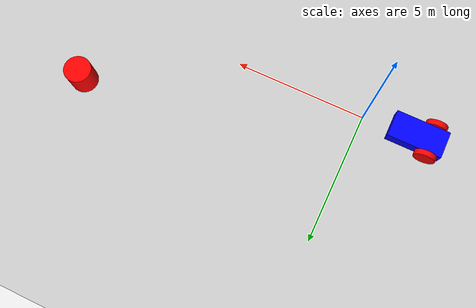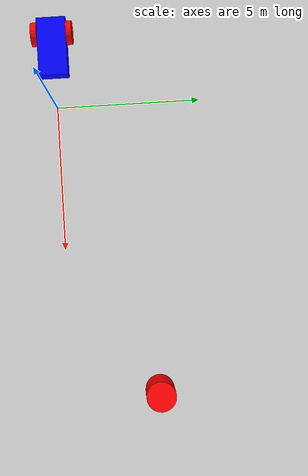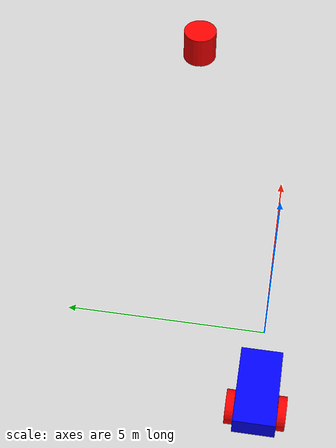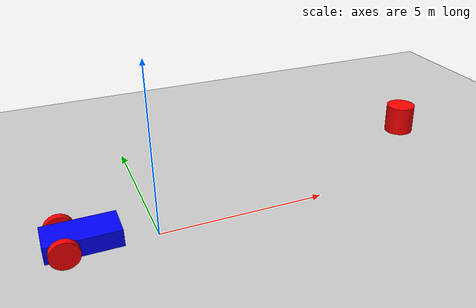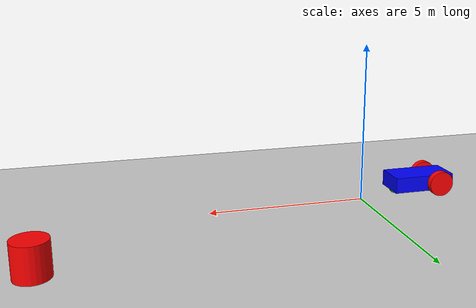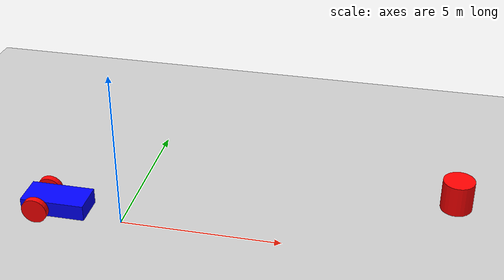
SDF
<?xml version="1.0"?>
<sdf version="1.6">
  <world name="rf_comms_custom">

    <physics name="1ms" type="ignored">
      <max_step_size>0.001</max_step_size>
      <real_time_factor>1.0</real_time_factor>
    </physics>
    <plugin
      filename="ignition-gazebo-physics-system"
      name="ignition::gazebo::systems::Physics">
    </plugin>
    <plugin
      filename="ignition-gazebo-user-commands-system"
      name="ignition::gazebo::systems::UserCommands">
    </plugin>
    <plugin
      filename="ignition-gazebo-scene-broadcaster-system"
      name="ignition::gazebo::systems::SceneBroadcaster">
    </plugin>
    <plugin
      filename="RFComms_custom"
      name="ignition::gazebo::systems::RFComms_custom">
      <file_config>
        <comms_analysis>/home/haruki/Desktop/ugv_comms_in_gazebo/comms_analysis/</comms_analysis>
      </file_config>
      <range_config>
        <max_range>500.0</max_range>
        <fading_exponent>2.0</fading_exponent>
        <l0>68</l0>
        <sigma>0.0</sigma>
      </range_config>
      <radio_config>
        <center_frequency>600000000</center_frequency>
        <capacity>2160000000</capacity>
        <tx_power>-10</tx_power>
        <thermal_noise_density>-174</thermal_noise_density>
        <modulation>QPSK</modulation>
        <antenna_gains_dir_path>/home/haruki/Desktop/ugv_comms_in_gazebo/antenna_gains/</antenna_gains_dir_path>
      </radio_config>
    </plugin>

    <light type="directional" name="sun">
      <cast_shadows>true</cast_shadows>
      <pose>0 0 10 0 0 0</pose>
      <diffuse>1 1 1 1</diffuse>
      <specular>0.5 0.5 0.5 1</specular>
      <attenuation>
        <range>1000</range>
        <constant>0.9</constant>
        <linear>0.01</linear>
        <quadratic>0.001</quadratic>
      </attenuation>
      <direction>-0.5 0.1 -0.9</direction>
    </light>

    <model name="ground_plane">
      <static>true</static>
      <link name="link">
        <collision name="collision">
          <geometry>
            <plane>
              <normal>0 0 1</normal>
              <size>1000 1000</size>
            </plane>
          </geometry>
        </collision>
        <visual name="visual">
          <geometry>
            <plane>
              <normal>0 0 1</normal>
              <size>1000 1000</size>
            </plane>
          </geometry>
          <material>
            <ambient>0.8 0.8 0.8 1</ambient>
            <diffuse>0.8 0.8 0.8 1</diffuse>
            <specular>0.8 0.8 0.8 1</specular>
          </material>
        </visual>
      </link>
    </model>

    <model name="ground_station_0">
      <static>true</static>
      <pose>10 3 0.5 0 0 0</pose>
      <link name="ground_station_link">
        <inertial>
          <inertia>
            <ixx>0.16666</ixx>
            <ixy>0</ixy>
            <ixz>0</ixz>
            <iyy>0.16666</iyy>
            <iyz>0</iyz>
            <izz>0.16666</izz>
          </inertia>
          <mass>1.0</mass>
        </inertial>
        <collision name="ground_station_collision">
          <geometry>
            <cylinder>
              <radius>0.5</radius>
              <length>1.0</length>
            </cylinder>
          </geometry>
        </collision>

        <visual name="ground_station_visual">
          <geometry>
            <cylinder>
              <radius>0.5</radius>
              <length>1.0</length>
            </cylinder>
          </geometry>
          <material>
            <ambient>1 0 0 1</ambient>
            <diffuse>1 0 0 1</diffuse>
            <specular>1 0 0 1</specular>
          </material>
        </visual>
      </link>

      <plugin
        filename="ignition-gazebo-comms-endpoint-system"
        name="ignition::gazebo::systems::CommsEndpoint">
        <address>ground_station_0</address>
        <topic>ground_station_0/rx</topic>
      </plugin>
    </model>

    <model name="ugv_0">
      <pose>-2 0 0.5 0 0 0</pose>
      <link name="ugv_link">
        <inertial>
          <mass>10.0</mass>
          <inertia>
            <ixx>1.6666</ixx>
            <ixy>0</ixy>
            <ixz>0</ixz>
            <iyy>1.6666</iyy>
            <iyz>0</iyz>
            <izz>1.6666</izz>
          </inertia>
        </inertial>
        <collision name="ugv_collision">
          <geometry>
            <box>
              <size>2.0 1.0 0.5</size>
            </box>
          </geometry>
        </collision>

        <visual name="ugv_visual">
          <geometry>
            <box>
              <size>2.0 1.0 0.5</size>
            </box>
          </geometry>
          <material>
            <ambient>0 0 1 1</ambient>
            <diffuse>0 0 1 1</diffuse>
            <specular>0 0 1 1</specular>
          </material>
        </visual>
      </link>

      <link name='left_rear_wheel'>
        <pose relative_to="ugv_link">-0.5 0.6 0 -1.5707 0 0</pose> <!--angles are in radian-->
        <inertial>
            <mass>2</mass>
            <inertia>
                <ixx>0.145833</ixx>
                <ixy>0</ixy>
                <ixz>0</ixz>
                <iyy>0.145833</iyy>
                <iyz>0</iyz>
                <izz>0.125</izz>
            </inertia>
        </inertial>
        <visual name='visual'>
            <geometry>
                <cylinder>
                    <radius>0.4</radius>
                    <length>0.2</length>
                </cylinder>
            </geometry>
            <material>
                <ambient>1.0 0.0 0.0 1</ambient>
                <diffuse>1.0 0.0 0.0 1</diffuse>
                <specular>1.0 0.0 0.0 1</specular>
            </material>
        </visual>
        <collision name='collision'>
            <geometry>
                <cylinder>
                    <radius>0.4</radius>
                    <length>0.2</length>
                </cylinder>
            </geometry>
        </collision>
      </link>

      <link name='right_rear_wheel'>
          <pose relative_to="ugv_link">-0.5 -0.6 0 -1.5707 0 0</pose> <!--angles are in radian-->
          <inertial>
              <mass>2</mass>
              <inertia>
                  <ixx>0.145833</ixx>
                  <ixy>0</ixy>
                  <ixz>0</ixz>
                  <iyy>0.145833</iyy>
                  <iyz>0</iyz>
                  <izz>0.125</izz>
              </inertia>
          </inertial>
          <visual name='visual'>
              <geometry>
                  <cylinder>
                      <radius>0.4</radius>
                      <length>0.2</length>
                  </cylinder>
              </geometry>
              <material>
                  <ambient>1.0 0.0 0.0 1</ambient>
                  <diffuse>1.0 0.0 0.0 1</diffuse>
                  <specular>1.0 0.0 0.0 1</specular>
              </material>
          </visual>
          <collision name='collision'>
              <geometry>
                  <cylinder>
                      <radius>0.4</radius>
                      <length>0.2</length>
                  </cylinder>
              </geometry>
          </collision>
      </link>

      <frame name="caster_frame" attached_to='ugv_link'>
          <pose>0.8 0 -0.2 0 0 0</pose>
      </frame>

      <!--caster wheel-->
      <link name='caster'>
          <pose relative_to='caster_frame'/>
          <inertial>
              <mass>1</mass>
              <inertia>
                  <ixx>0.1</ixx>
                  <ixy>0</ixy>
                  <ixz>0</ixz>
                  <iyy>0.1</iyy>
                  <iyz>0</iyz>
                  <izz>0.1</izz>
              </inertia>
          </inertial>
          <visual name='visual'>
              <geometry>
                  <sphere>
                      <radius>0.2</radius>
                  </sphere>
              </geometry>
              <material>
                  <ambient>0.0 1 0.0 1</ambient>
                  <diffuse>0.0 1 0.0 1</diffuse>
                  <specular>0.0 1 0.0 1</specular>
              </material>
          </visual>
          <collision name='collision'>
              <geometry>
                  <sphere>
                      <radius>0.2</radius>
                  </sphere>
              </geometry>
          </collision>
      </link>

      <!--connecting these links together using joints-->

      <joint name='left_rear_wheel_joint' type='revolute'>
          <pose relative_to='left_rear_wheel'/>
          <parent>ugv_link</parent>
          <child>left_rear_wheel</child>
          <axis>
              <xyz expressed_in='__model__'>0 1 0</xyz>
              <limit>
                  <lower>-1.79769e+308</lower>
                  <upper>1.79769e+308</upper>
              </limit>
          </axis>
      </joint>

      <joint name='right_rear_wheel_joint' type='revolute'>
          <pose relative_to='right_rear_wheel'/>
          <parent>ugv_link</parent>
          <child>right_rear_wheel</child>
          <axis>
              <xyz expressed_in='__model__'>0 1 0</xyz>
              <limit>
                  <lower>-1.79769e+308</lower>
                  <upper>1.79769e+308</upper>
              </limit>
          </axis>
      </joint>

      <!--different type of joints ball joint--> <!--defult value is the child-->
      <joint name='caster_wheel' type='ball'>
          <parent>ugv_link</parent>
          <child>caster</child>
      </joint>

      <!--diff drive plugin-->
      <plugin
          filename="libignition-gazebo-diff-drive-system.so"
          name="ignition::gazebo::systems::DiffDrive">
          <left_joint>left_rear_wheel_joint</left_joint>
          <right_joint>right_rear_wheel_joint</right_joint>
          <wheel_separation>1.2</wheel_separation>
          <wheel_radius>0.4</wheel_radius>
          <odom_publish_frequency>1</odom_publish_frequency>
          <topic>cmd_vel</topic>
      </plugin>

      <plugin
        filename="ignition-gazebo-comms-endpoint-system"
        name="ignition::gazebo::systems::CommsEndpoint">
        <address>ugv_0</address>
        <topic>ugv_0/rx</topic>
        <broker>
          <bind_service>/broker/bind</bind_service>
          <unbind_service>/broker/unbind</unbind_service>
        </broker>
      </plugin>

    </model>

    <!-- Moving Forward -->
    <plugin filename="libignition-gazebo-triggered-publisher-system.so"
            name="ignition::gazebo::systems::TriggeredPublisher">
        <input type="ignition.msgs.Int32" topic="/keyboard/keypress">
            <match field="data">16777235</match>
        </input>
        <output type="ignition.msgs.Twist" topic="/cmd_vel">
            linear: {x: 1.0}, angular: {z: 0.0}
        </output>
    </plugin>

    <!-- Moving Backward-->
    <plugin filename="libignition-gazebo-triggered-publisher-system.so"
            name="ignition::gazebo::systems::TriggeredPublisher">
        <input type="ignition.msgs.Int32" topic="/keyboard/keypress">
            <match field="data">16777237</match>
        </input>
        <output type="ignition.msgs.Twist" topic="/cmd_vel">
            linear: {x: -1.0}, angular: {z: 0.0}
        </output>
    </plugin>

    <!-- Rotating right-->
    <plugin filename="libignition-gazebo-triggered-publisher-system.so"
            name="ignition::gazebo::systems::TriggeredPublisher">
        <input type="ignition.msgs.Int32" topic="/keyboard/keypress">
            <match field="data">16777236</match>
        </input>
        <output type="ignition.msgs.Twist" topic="/cmd_vel">
            linear: {x: 0.0}, angular: {z: -0.5}
        </output>
    </plugin>

    <!--Rotating left-->
    <plugin filename="libignition-gazebo-triggered-publisher-system.so"
            name="ignition::gazebo::systems::TriggeredPublisher">
        <input type="ignition.msgs.Int32" topic="/keyboard/keypress">
            <match field="data">16777234</match>
        </input>
        <output type="ignition.msgs.Twist" topic="/cmd_vel">
            linear: {x: 0.0}, angular: {z: 0.5}
        </output>
    </plugin>
  </world>
</sdf>
